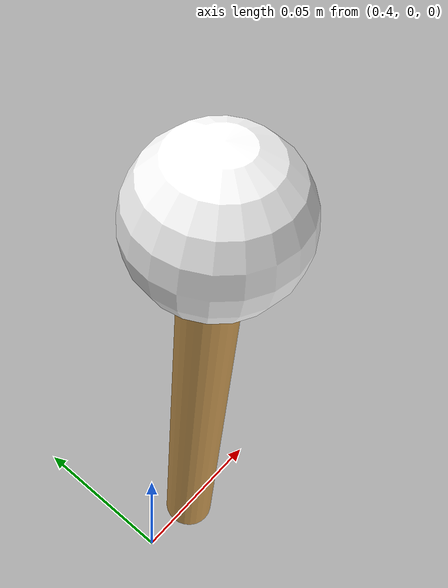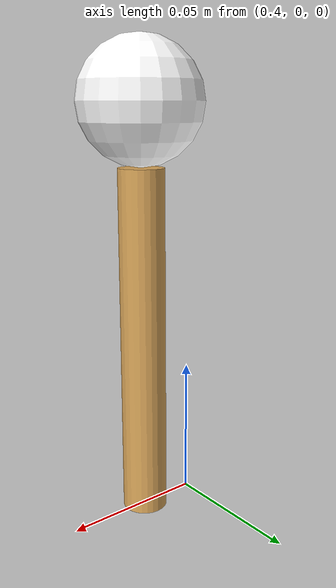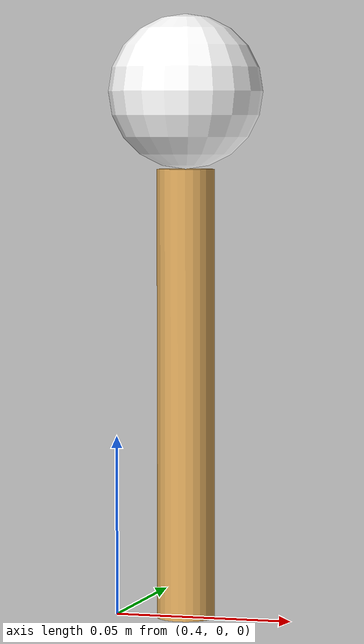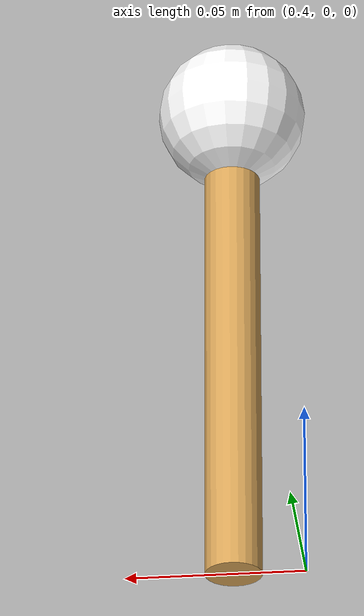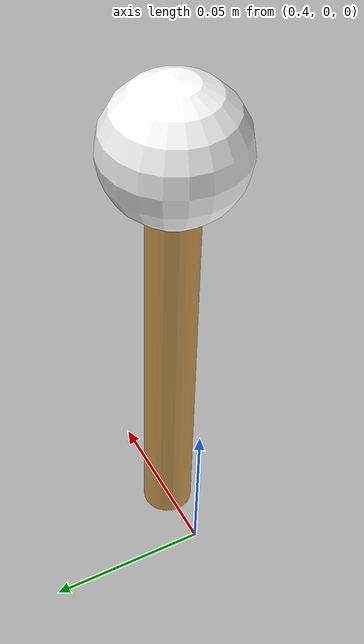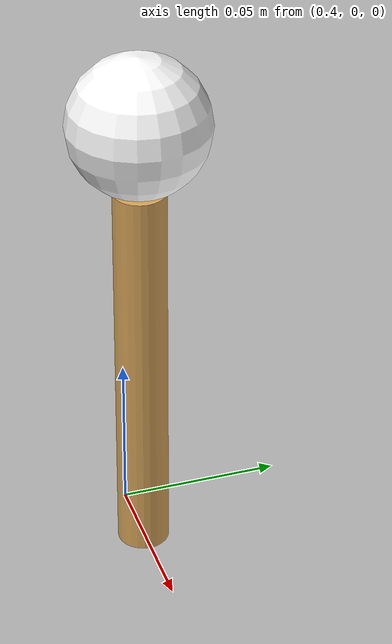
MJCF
<mujoco>
  <worldbody>
    <!-- The current swing passes above the floor, so a tee supports the ball.
         Tee top = 0.12465 m; ball centre = tee top + radius = 0.146 m. -->
    <geom name="tee" type="cylinder" pos="0.42 0 0.062325"
          size="0.008 0.062325" rgba="0.85 0.65 0.35 1"
          contype="0" conaffinity="0"/>
    <!-- Independent world body: gravity and contact forces move the ball. -->
    <body name="bola" pos="0.42 0 0.146">
      <freejoint name="bola_livre"/>
      <geom name="bola" type="sphere" size="0.02135" mass="0.04593"
            rgba="1 1 1 1" contype="0" conaffinity="0"/>
    </body>
  </worldbody>
  <contact>
    <pair geom1="cabeca_taco" geom2="bola" condim="6"
          friction="0.4 0.4 0.005 0.001 0.001" solref="0.01 0.7"/>
    <pair geom1="floor" geom2="bola" condim="6"
          friction="0.3 0.3 0.005 0.001 0.001" solref="0.01 1"/>
    <pair geom1="tee" geom2="bola" condim="6"
          friction="0.3 0.3 0.005 0.001 0.001" solref="0.01 1"/>
  </contact>
</mujoco>
